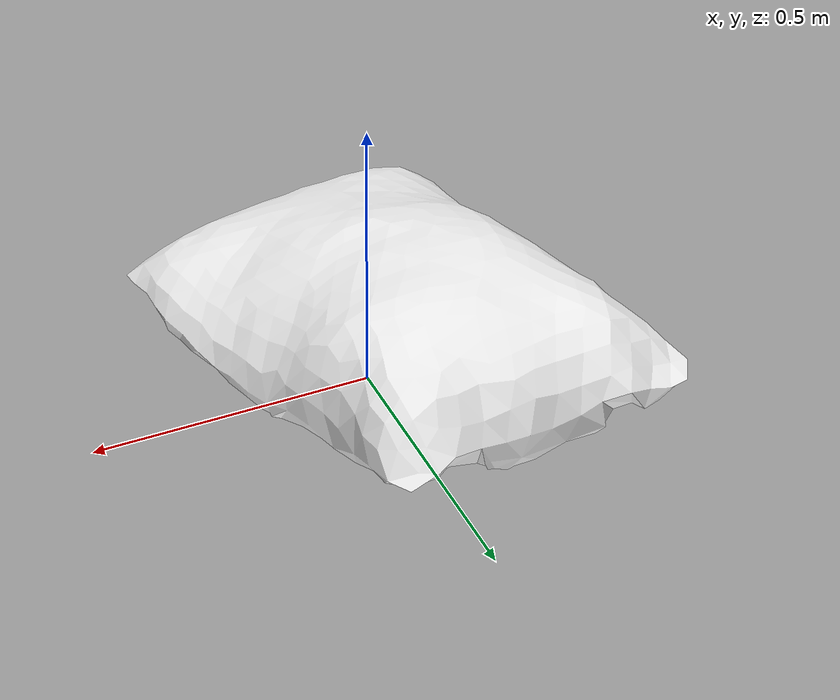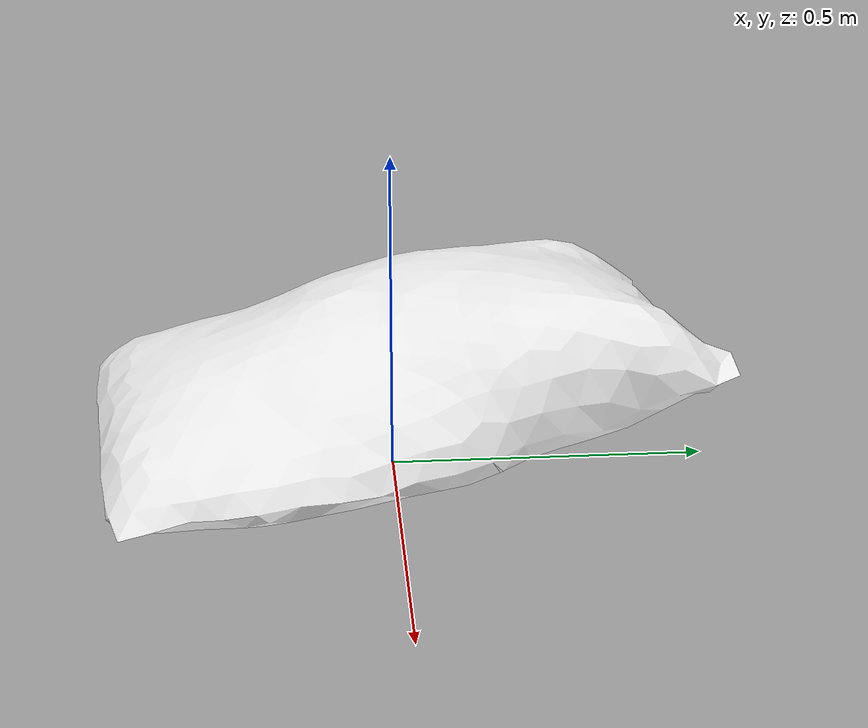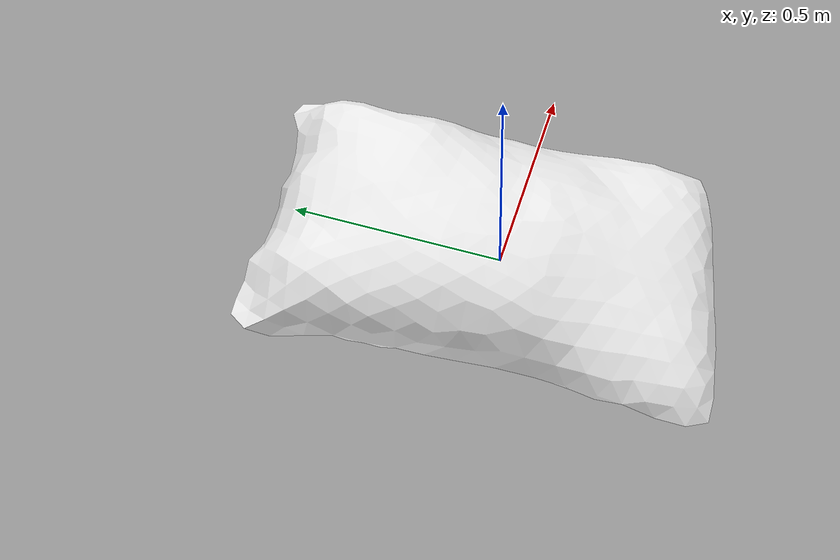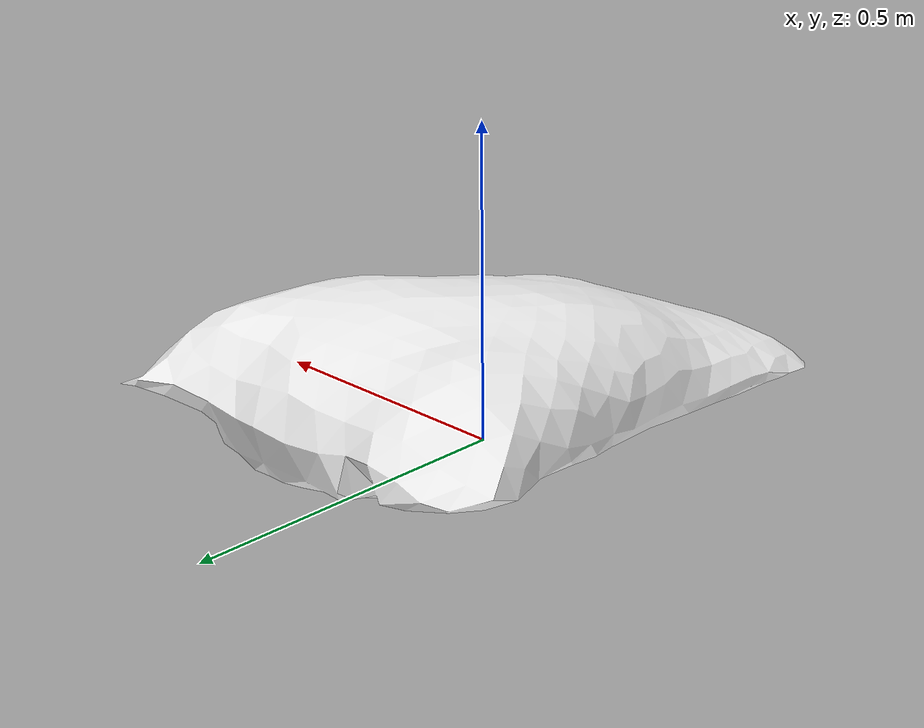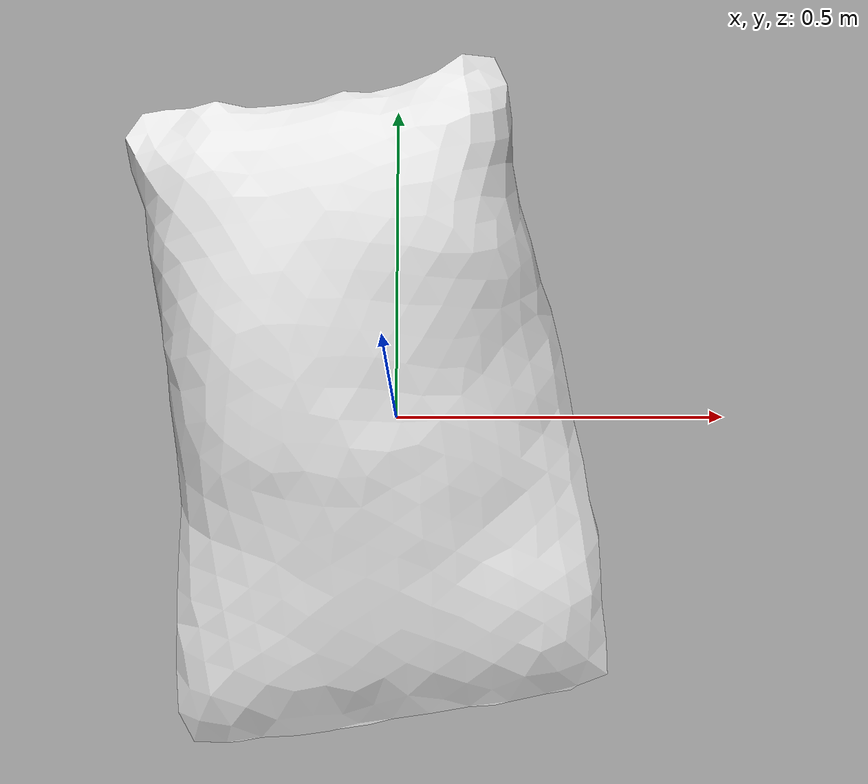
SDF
<?xml version="1.0" ?><sdf version="1.5"><model name="pellets-sack1">
<link name="link">
<pose>0 0 0 0 0 0</pose>
<inertial>
<pose>-0.0431905 0.00805101 0.168906 0 0 0</pose>
<mass>16</mass>
<inertia>
<ixx>1.42441</ixx>
<ixy>0</ixy><iyy>0.771493</iyy>
<ixz>0</ixz><iyz>0</iyz><izz>1.99023</izz>
</inertia>
</inertial>
<visual name="visual">
<pose>0 0 0 0 0 0</pose>
<geometry><mesh><uri>model://pellets-sack1/meshes/pellets-sack1.dae</uri></mesh></geometry>
<material><script><uri>file://media/materials/scripts/gazebo.material</uri><name>Gazebo/WhiteGlow</name></script></material></visual>
<collision name="collision"><pose>0 0 0 0 0 0</pose><geometry><mesh><uri>model://pellets-sack1/meshes/pellets-sack1.dae</uri></mesh></geometry>
<surface><friction><ode><mu>1.000000</mu><mu2>1.000000</mu2></ode></friction></surface>
</collision></link></model></sdf>
